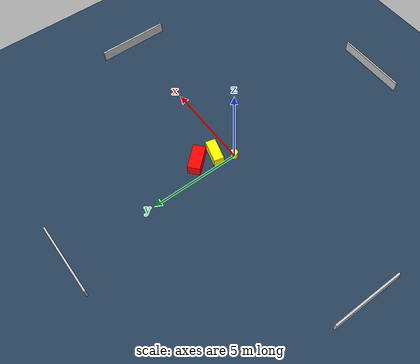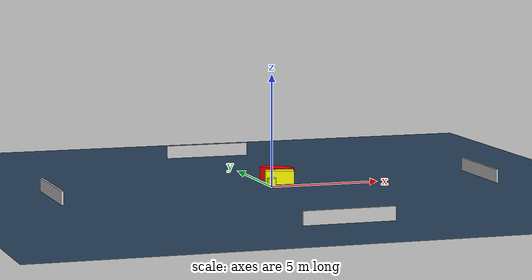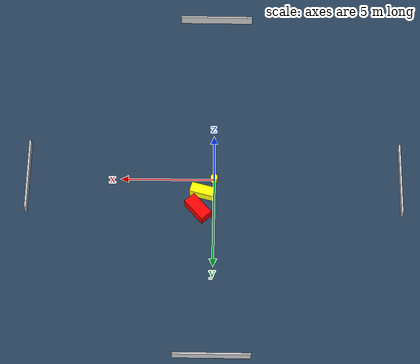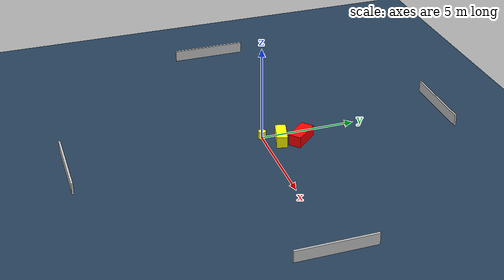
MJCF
<?xml version="1.0" ?>
<mujoco model="generated_environment">
  <option timestep="0.01" integrator="RK4" cone="elliptic"/>
  <default>
    <geom density="1"/>
  </default>
  <asset>
    <texture builtin="gradient" height="3072" name="skybox" rgb1="0.3 0.5 0.7" rgb2="0 0 0" type="skybox" width="512"/>
    <texture builtin="checker" height="300" name="groundplane" rgb1="0.2 0.3 0.4" rgb2="0.1 0.2 0.3" type="2d" width="300"/>
    <material name="groundplane" reflectance="0.2" texrepeat="5 5" texture="groundplane"/>
  </asset>
  <worldbody>
    <light dir="0 0 -1" directional="true" pos="0 0 1.5"/>
    <geom condim="3" friction="0.5 0.005 0.001" material="groundplane" name="floor" pos="0 0 0" size="0 0 0.05" type="plane"/>
    <body name="walls">
      <geom name="wall_1" condim="4" pos="-10.0 0.0 0.3" rgba="0.800000011920929 0.800000011920929 0.800000011920929 1.0" size="0.05 2.0 0.3" type="box"/>
      <geom name="wall_2" condim="4" pos="10.0 0.0 0.3" rgba="0.800000011920929 0.800000011920929 0.800000011920929 1.0" size="0.05 2.0 0.3" type="box"/>
      <geom name="wall_3" condim="4" pos="0.0 -10.0 0.3" rgba="0.800000011920929 0.800000011920929 0.800000011920929 1.0" size="2.0 0.05 0.3" type="box"/>
      <geom name="wall_4" condim="4" pos="0.0 10.0 0.3" rgba="0.800000011920929 0.800000011920929 0.800000011920929 1.0" size="2.0 0.05 0.3" type="box"/>
    </body>
    <body name="robot">
      <joint name="joint_x" type="slide" pos="0 0 0" axis="1 0 0"/>
      <joint name="joint_y" type="slide" pos="0 0 0" axis="0 1 0"/>
      <geom name="robot" type="cylinder" pos="0.0 0.0 0.2" size="0.2 0.2 0.0" mass="5.0" friction="1.0 0.005 0.0001" condim="4" rgba="1.0 1.0 0.0 1.0"/>
    </body>
    <body name="obstacle_1_movable">
      <geom name="obstacle_1_movable" condim="4" pos="0.6216464469737474 0.8143881365231826 0.3" euler="0 0 345.5142143197221" friction="0.0 0.005 0.001" rgba="1.0 1.0 0.0 1.0" size="0.6405863257457407 0.27722296886352454 0.3" type="box" mass="0.1"/>
      <joint type="free"/>
    </body>
    <body name="obstacle_2_static">
      <geom name="obstacle_2_static" condim="4" pos="0.8386955134010515 1.8144824201951213 0.3" euler="0 0 131.67440266286022" friction="0.0 0.005 0.001" rgba="1.0 0.0 0.0 1.0" size="0.7070337071737431 0.34226019008718994 0.3" type="box"/>
    </body>
  </worldbody>
  <actuator>
    <motor name="actuator_x" joint="joint_x" gear="1" ctrlrange="-1 1"/>
    <motor name="actuator_y" joint="joint_y" gear="1" ctrlrange="-1 1"/>
  </actuator>
</mujoco>
